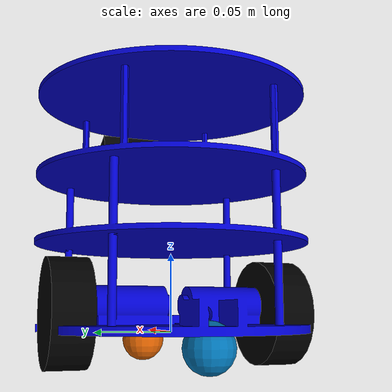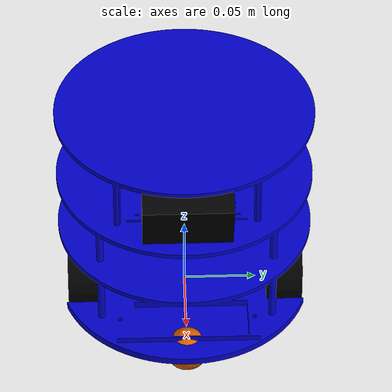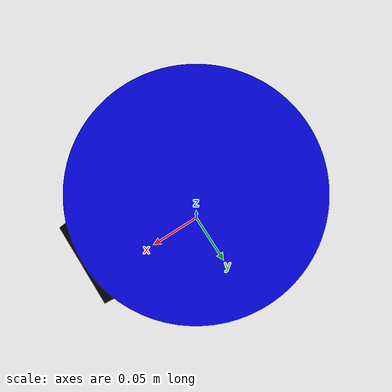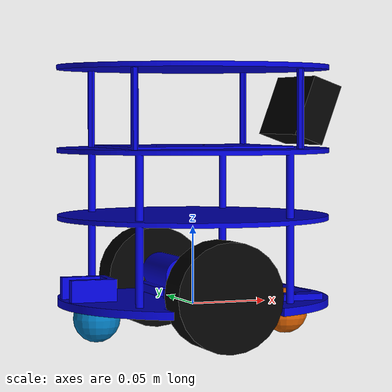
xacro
<?xml version="1.0"?>
<robot name="c_ros_bot" xmlns:xacro="http://ros.org/wiki/xacro">

  <xacro:arg name="robot_name" default="robot_1"/>

  <material name="blue"><color rgba="0 0 0.8 1"/></material>
  <material name="black"><color rgba="0 0 0 1"/></material>

  <link name="base_footprint"/>

  <link name="base_link">
    <visual>
      <origin xyz="0 0 0" rpy="0 0 -1.5708"/>
      <geometry>
        <mesh filename="file://$(find c_ros_sim)/meshes/Futbot3.0.stl" scale="0.001 0.001 0.001"/>
      </geometry>
      <material name="blue"/>
    </visual>
    <collision>
      <origin xyz="0 0 0.025" rpy="0 0 0"/>
      <geometry>
        <box size="0.25 0.15 0.05"/>
      </geometry>
    </collision>
    <inertial>
      <mass value="1.0"/>
      <inertia ixx="0.002" ixy="0" ixz="0" iyy="0.005" iyz="0" izz="0.006"/>
    </inertial>
  </link>

  <joint name="base_joint" type="fixed">
    <parent link="base_footprint"/>
    <child link="base_link"/>
    <origin xyz="0 0 0" rpy="0 0 0"/>
  </joint>

  <link name="left_wheel">
    <visual>
      <origin xyz="0 0 0" rpy="1.5708 0 0"/>
      <geometry>
        <cylinder radius="0.034" length="0.025"/>
      </geometry>
      <material name="black"/>
    </visual>
    <collision>
      <origin xyz="0 0 0" rpy="1.5708 0 0"/>
      <geometry>
        <cylinder radius="0.034" length="0.025"/>
      </geometry>
    </collision>
    <inertial>
      <mass value="0.1"/>
      <inertia ixx="0.00003" ixy="0" ixz="0" iyy="0.00003" iyz="0" izz="0.00005"/>
    </inertial>
  </link>

  <joint name="left_wheel_joint" type="continuous">
    <parent link="base_link"/>
    <child link="left_wheel"/>
    <origin xyz="-0.005 0.069 0.012" rpy="0 0 0"/>
    <axis xyz="0 1 0"/>
  </joint>

  <link name="right_wheel">
    <visual>
      <origin xyz="0 0 0" rpy="1.5708 0 0"/>
      <geometry>
        <cylinder radius="0.034" length="0.025"/>
      </geometry>
      <material name="black"/>
    </visual>
    <collision>
      <origin xyz="0 0 0" rpy="1.5708 0 0"/>
      <geometry>
        <cylinder radius="0.034" length="0.025"/>
      </geometry>
    </collision>
    <inertial>
      <mass value="0.1"/>
      <inertia ixx="0.00003" ixy="0" ixz="0" iyy="0.00003" iyz="0" izz="0.00005"/>
    </inertial>
  </link>

  <joint name="right_wheel_joint" type="continuous">
    <parent link="base_link"/>
    <child link="right_wheel"/>
    <origin xyz="-0.005 -0.069 0.012" rpy="0 0 0"/>
    <axis xyz="0 1 0"/>
  </joint>

  <link name="caster_wheel">
    <visual>
      <origin xyz="0 0 0" rpy="0 0 0"/>
      <geometry><sphere radius="0.015"/></geometry>
    </visual>
    <collision><geometry><sphere radius="0.015"/></geometry></collision>
    <inertial><mass value="0.05"/><inertia ixx="0.00001" ixy="0" ixz="0" iyy="0.00001" iyz="0" izz="0.00001"/></inertial>
  </link>
  <joint name="caster_wheel_joint" type="fixed">
    <parent link="base_link"/>
    <child link="caster_wheel"/>
    <origin xyz="-0.065 0 -0.007" rpy="0 0 0"/>
  </joint>

  <link name="caster_wheel2">
    <visual>
      <origin xyz="0 0 0" rpy="0 0 0"/>
      <geometry><sphere radius="0.015"/></geometry>
    </visual>
    <collision><geometry><sphere radius="0.015"/></geometry></collision>
    <inertial><mass value="0.05"/><inertia ixx="0.00001" ixy="0" ixz="0" iyy="0.00001" iyz="0" izz="0.00001"/></inertial>
  </link>
  <joint name="caster_wheel2_joint" type="fixed">
    <parent link="base_link"/>
    <child link="caster_wheel2"/>
    <origin xyz="0.065 0 -0.007" rpy="0 0 0"/>
  </joint>

  <link name="camera_link">
    <visual>
      <origin xyz="0 0 0" rpy="0 0 0"/>
      <geometry><box size="0.02 0.06 0.04"/></geometry>
      <material name="black"/>
    </visual>
    <inertial>
      <mass value="0.01"/> <inertia ixx="0.00001" ixy="0" ixz="0" iyy="0.00001" iyz="0" izz="0.00001"/>
    </inertial>
  </link>

  <joint name="camera_joint" type="fixed">
    <parent link="base_link"/>
    <child link="camera_link"/>
    <origin xyz="0.075 0 0.125" rpy="0 0.3490 0"/>
  </joint>

  <gazebo reference="camera_link">
    <sensor type="camera" name="futbot_camera">
      <pose>0 0 0 0 0 0</pose>
      <always_on>true</always_on>
      <visualize>true</visualize>
      <update_rate>30.0</update_rate>
      <topic>/$(arg robot_name)/camera/image_raw</topic>
      <camera name="head">
        <horizontal_fov>1.1944</horizontal_fov>
        <image>
          <width>640</width>
          <height>480</height>
          <format>R8G8B8</format>
        </image>
        <clip><near>0.02</near><far>10.0</far></clip>
        <distortion>
          <k1>-0.421</k1><k2>0.185</k2><k3>0.0</k3><p1>0.0</p1><p2>0.0</p2><center>0.5303 0.3875</center>
        </distortion>
      </camera>
    </sensor>
  </gazebo>

  <gazebo reference="camera_link">
    <material><ambient>0.1 0.1 0.1 1</ambient><diffuse>0.1 0.1 0.1 1</diffuse></material>
  </gazebo>
  <gazebo reference="left_wheel">
    <material><ambient>0 0 0 1</ambient><diffuse>0 0 0 1</diffuse></material>
  </gazebo>
  <gazebo reference="right_wheel">
    <material><ambient>0 0 0 1</ambient><diffuse>0 0 0 1</diffuse></material>
  </gazebo>

  <gazebo reference="caster_wheel">
    <mu>0.0</mu><mu2>0.0</mu2>
  </gazebo>
  <gazebo reference="caster_wheel2">
    <mu>0.0</mu><mu2>0.0</mu2>
  </gazebo>

  <gazebo>
    <plugin filename="gz-sim-diff-drive-system" name="gz::sim::systems::DiffDrive">
      <left_joint>left_wheel_joint</left_joint>
      <right_joint>right_wheel_joint</right_joint>
      <wheel_separation>0.138</wheel_separation>
      <wheel_radius>0.034</wheel_radius>
      <max_linear_velocity>0.88</max_linear_velocity>
      <max_angular_velocity>10.6</max_angular_velocity>
      <topic>/$(arg robot_name)/cmd_vel</topic>
      <odom_topic>/$(arg robot_name)/odom</odom_topic>
      <frame_id>$(arg robot_name)/odom</frame_id>
      <child_frame_id>$(arg robot_name)/base_footprint</child_frame_id>
    </plugin>
  </gazebo>
</robot>
